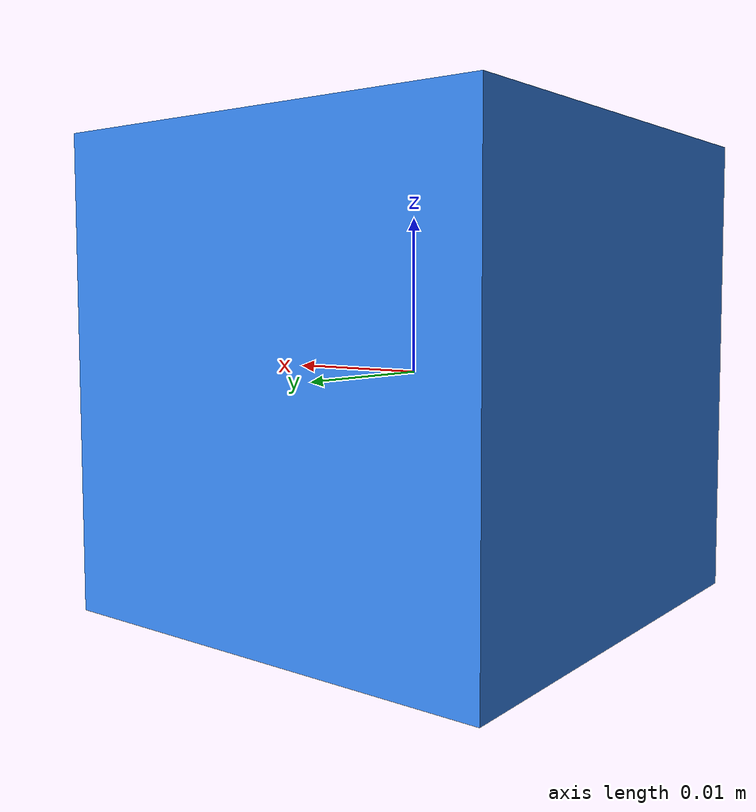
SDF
<?xml version="1.0"?>
<sdf version="1.6">
  <model name="workpiece_good">
    <link name="link">
      <inertial>
        <mass>0.035</mass>
        <inertia>
          <ixx>5.25e-6</ixx>
          <ixy>0.0</ixy>
          <ixz>0.0</ixz>
          <iyy>5.25e-6</iyy>
          <iyz>0.0</iyz>
          <izz>5.25e-6</izz>
        </inertia>
      </inertial>
      <collision name="collision">
        <geometry>
          <box>
            <size>0.030 0.030 0.030</size>
          </box>
        </geometry>
        <surface>
          <friction>
            <ode>
              <mu>1.5</mu>
              <mu2>1.5</mu2>
              <slip1>0.0</slip1>
              <slip2>0.0</slip2>
            </ode>
            <torsional>
              <coefficient>5.0</coefficient>
              <patch_radius>0.015</patch_radius>
            </torsional>
          </friction>
          <contact>
            <ode>
              <kp>200000.0</kp>
              <kd>200.0</kd>
              <max_vel>0.005</max_vel>
              <min_depth>0.001</min_depth>
            </ode>
          </contact>
          <bounce>
            <restitution_coefficient>0.0</restitution_coefficient>
            <threshold>1000000.0</threshold>
          </bounce>
        </surface>
      </collision>
      <visual name="visual">
        <geometry>
          <box>
            <size>0.030 0.030 0.030</size>
          </box>
        </geometry>
        <material>
          <ambient>0.1 0.4 0.8 1.0</ambient>
          <diffuse>0.2 0.5 0.9 1.0</diffuse>
          <specular>0.6 0.7 0.9 1.0</specular>
        </material>
      </visual>
      <!-- QC Passed Green Visual Indicator -->
      <visual name="qc_marker">
        <pose>0 0 0.0151 0 0 0</pose>
        <geometry>
          <cylinder>
            <radius>0.009</radius>
            <length>0.0002</length>
          </cylinder>
        </geometry>
        <material>
          <ambient>0.1 0.85 0.2 1.0</ambient>
          <diffuse>0.2 0.95 0.3 1.0</diffuse>
        </material>
      </visual>
    </link>
  </model>
</sdf>
